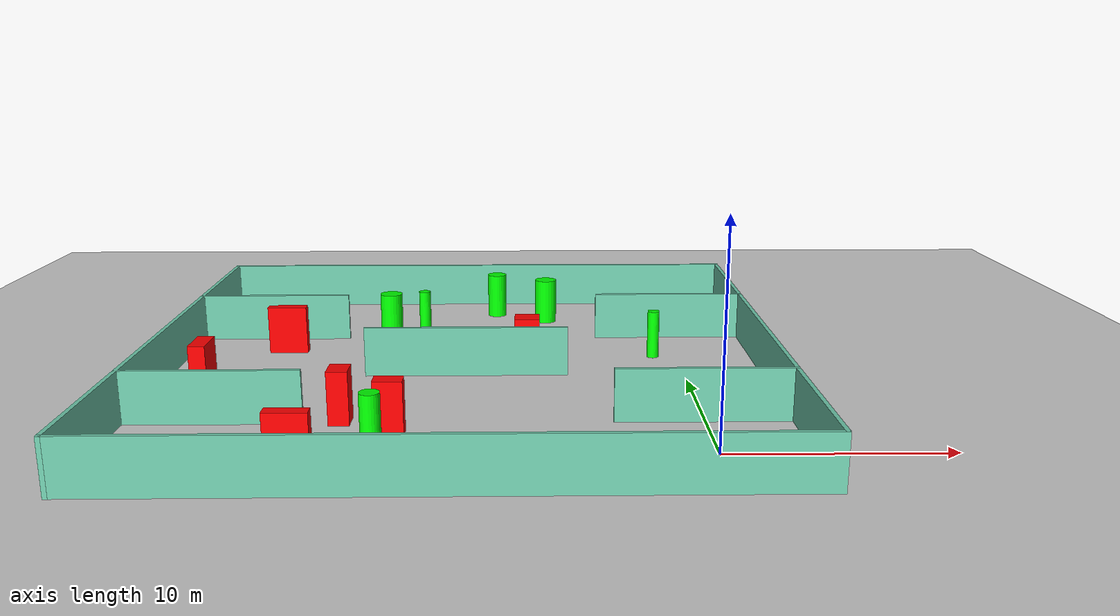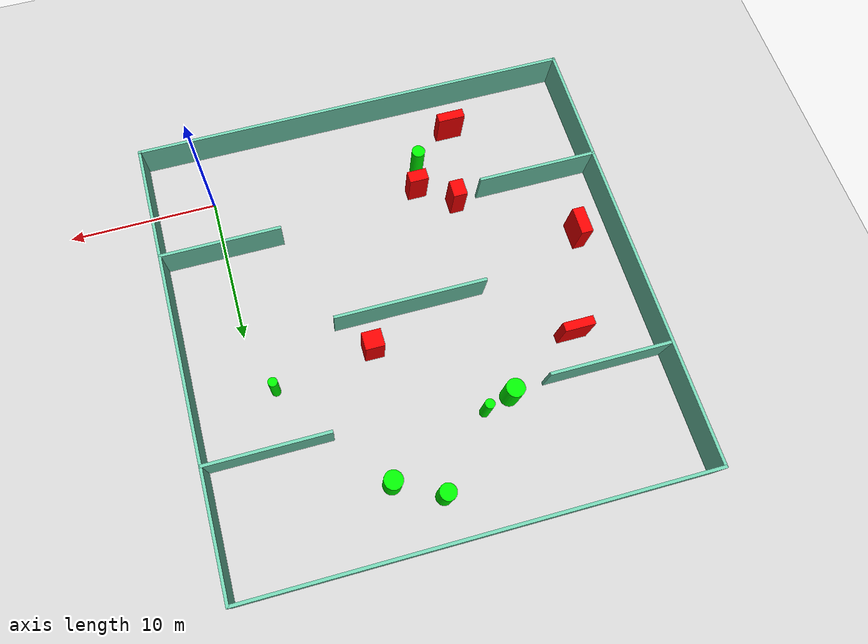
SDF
<sdf version="1.7">
 <world name="default">
  <light name="sun" type="directional">
   <pose>0 0 10 0 -0 0</pose>
   <diffuse>0.8 0.8 0.8 1</diffuse>
   <specular>0.2 0.2 0.2 1</specular>
   <attenuation>
    <range>1000</range>
    <constant>0.9</constant>
    <linear>0.01</linear>
    <quadratic>0.001</quadratic>
   </attenuation>
   <direction>-0.5 0.1 -0.9</direction>
   <spot><inner_angle>0</inner_angle><outer_angle>0</outer_angle><falloff>0</falloff></spot>
  </light>
  <model name="ground_plane">
   <static>1</static>
   <link name="link">
    <collision name="collision">
     <geometry><plane><normal>0 0 1</normal><size>100 100</size></plane></geometry>
     <surface>
      <contact><collide_bitmask>65535</collide_bitmask></contact>
      <friction><ode><mu>100</mu><mu2>50</mu2></ode></friction>
     </surface>
    </collision>
    <visual name="visual">
     <cast_shadows>0</cast_shadows>
     <geometry><plane><normal>0 0 1</normal><size>100 100</size></plane></geometry>
     <material>
      <script><uri>file://media/materials/scripts/gazebo.material</uri><name>Gazebo/Grey</name></script>
     </material>
    </visual>
   </link>
  </model>
  <gravity>0 0 -9.8</gravity>
  <magnetic_field>6e-06 2.3e-05 -4.2e-05</magnetic_field>
  <atmosphere type="adiabatic"/>
  <physics type="ode">
   <max_step_size>0.001</max_step_size>
   <real_time_factor>1</real_time_factor>
   <real_time_update_rate>1000</real_time_update_rate>
  </physics>
  <scene><ambient>0.4 0.4 0.4 1</ambient><background>0.7 0.7 0.7 1</background><shadows>1</shadows></scene>
  <spherical_coordinates>
   <surface_model>EARTH_WGS84</surface_model>
   <latitude_deg>0</latitude_deg>
   <longitude_deg>0</longitude_deg>
   <elevation>0</elevation>
   <heading_deg>0</heading_deg>
  </spherical_coordinates>
  <model name="my_base_walls">
   <link name="Wall_10">
    <collision name="Wall_10_Collision">
     <geometry><box><size>8.2 0.2 2.5</size></box></geometry>
     <pose>0 0 1.25 0 -0 0</pose>
    </collision>
    <visual name="Wall_10_Visual">
     <pose>0 0 1.25 0 -0 0</pose>
     <geometry><box><size>8.2 0.2 2.5</size></box></geometry>
     <material>
      <script><uri>file://media/materials/scripts/gazebo.material</uri><name>Gazebo/Grey</name></script>
      <ambient>0.435294 0.796078 0.67451 1</ambient>
     </material>
     <meta><layer>0</layer></meta>
    </visual>
    <pose>-11 -7 0 0 -0 0</pose>
   </link>
   <link name="Wall_12">
    <collision name="Wall_12_Collision">
     <geometry><box><size>8.2 0.2 2.5</size></box></geometry>
     <pose>0 0 1.25 0 -0 0</pose>
    </collision>
    <visual name="Wall_12_Visual">
     <pose>0 0 1.25 0 -0 0</pose>
     <geometry><box><size>8.2 0.2 2.5</size></box></geometry>
     <material>
      <script><uri>file://media/materials/scripts/gazebo.material</uri><name>Gazebo/Grey</name></script>
      <ambient>0.435294 0.796078 0.67451 1</ambient>
     </material>
     <meta><layer>0</layer></meta>
    </visual>
    <pose>-11 7 0 0 -0 0</pose>
   </link>
   <link name="Wall_14">
    <collision name="Wall_14_Collision">
     <geometry><box><size>8.2 0.2 2.5</size></box></geometry>
     <pose>0 0 1.25 0 -0 0</pose>
    </collision>
    <visual name="Wall_14_Visual">
     <pose>0 0 1.25 0 -0 0</pose>
     <geometry><box><size>8.2 0.2 2.5</size></box></geometry>
     <material>
      <script><uri>file://media/materials/scripts/gazebo.material</uri><name>Gazebo/Grey</name></script>
      <ambient>0.435294 0.796078 0.67451 1</ambient>
     </material>
     <meta><layer>0</layer></meta>
    </visual>
    <pose>11 7 0 0 -0 3.14159</pose>
   </link>
   <link name="Wall_16">
    <collision name="Wall_16_Collision">
     <geometry><box><size>10.2 0.2 2.5</size></box></geometry>
     <pose>0 0 1.25 0 -0 0</pose>
    </collision>
    <visual name="Wall_16_Visual">
     <pose>0 0 1.25 0 -0 0</pose>
     <geometry><box><size>10.2 0.2 2.5</size></box></geometry>
     <material>
      <script><uri>file://media/materials/scripts/gazebo.material</uri><name>Gazebo/Grey</name></script>
      <ambient>0.435294 0.796078 0.67451 1</ambient>
     </material>
     <meta><layer>0</layer></meta>
    </visual>
    <pose>0 0 0 0 -0 3.14159</pose>
   </link>
   <link name="Wall_2">
    <collision name="Wall_2_Collision">
     <geometry><box><size>30.2 0.2 2.5</size></box></geometry>
     <pose>0 0 1.25 0 -0 0</pose>
    </collision>
    <visual name="Wall_2_Visual">
     <pose>0 0 1.25 0 -0 0</pose>
     <geometry><box><size>30.2 0.2 2.5</size></box></geometry>
     <material>
      <script><uri>file://media/materials/scripts/gazebo.material</uri><name>Gazebo/Grey</name></script>
      <ambient>0.435294 0.796078 0.67451 1</ambient>
     </material>
     <meta><layer>0</layer></meta>
    </visual>
    <pose>0 -15 0 0 -0 3.14159</pose>
   </link>
   <link name="Wall_3">
    <collision name="Wall_3_Collision">
     <geometry><box><size>30.2 0.2 2.5</size></box></geometry>
     <pose>0 0 1.25 0 -0 0</pose>
    </collision>
    <visual name="Wall_3_Visual">
     <pose>0 0 1.25 0 -0 0</pose>
     <geometry><box><size>30.2 0.2 2.5</size></box></geometry>
     <material>
      <script><uri>file://media/materials/scripts/gazebo.material</uri><name>Gazebo/Grey</name></script>
      <ambient>0.435294 0.796078 0.67451 1</ambient>
     </material>
     <meta><layer>0</layer></meta>
    </visual>
    <pose>-15 0 0 0 -0 1.5708</pose>
   </link>
   <link name="Wall_4">
    <collision name="Wall_4_Collision">
     <geometry><box><size>30.2 0.2 2.5</size></box></geometry>
     <pose>0 0 1.25 0 -0 0</pose>
    </collision>
    <visual name="Wall_4_Visual">
     <pose>0 0 1.25 0 -0 0</pose>
     <geometry><box><size>30.2 0.2 2.5</size></box></geometry>
     <material>
      <script><uri>file://media/materials/scripts/gazebo.material</uri><name>Gazebo/Grey</name></script>
      <ambient>0.435294 0.796078 0.67451 1</ambient>
     </material>
     <meta><layer>0</layer></meta>
    </visual>
    <pose>0 15 0 0 -0 0</pose>
   </link>
   <link name="Wall_6">
    <collision name="Wall_6_Collision">
     <geometry><box><size>30.2 0.2 2.5</size></box></geometry>
     <pose>0 0 1.25 0 -0 0</pose>
    </collision>
    <visual name="Wall_6_Visual">
     <pose>0 0 1.25 0 -0 0</pose>
     <geometry><box><size>30.2 0.2 2.5</size></box></geometry>
     <material>
      <script><uri>file://media/materials/scripts/gazebo.material</uri><name>Gazebo/Grey</name></script>
      <ambient>0.435294 0.796078 0.67451 1</ambient>
     </material>
     <meta><layer>0</layer></meta>
    </visual>
    <pose>15 0 0 0 -0 1.5708</pose>
   </link>
   <link name="Wall_8">
    <collision name="Wall_8_Collision">
     <geometry><box><size>8.2 0.2 2.5</size></box></geometry>
     <pose>0 0 1.25 0 -0 0</pose>
    </collision>
    <visual name="Wall_8_Visual">
     <pose>0 0 1.25 0 -0 0</pose>
     <geometry><box><size>8.2 0.2 2.5</size></box></geometry>
     <material>
      <script><uri>file://media/materials/scripts/gazebo.material</uri><name>Gazebo/Grey</name></script>
      <ambient>0.435294 0.796078 0.67451 1</ambient>
     </material>
     <meta><layer>0</layer></meta>
    </visual>
    <pose>11 -7 0 0 -0 3.14159</pose>
   </link>
   <static>1</static>
   <pose>-11 11 0 0 -0 0</pose>
  </model>
  <model name="cylinder1">
   <static>1</static>
   <link name="link">
    <inertial>
     <mass>1</mass>
     <inertia><ixx>0.5</ixx><ixy>0</ixy><ixz>0</ixz><iyy>0.5</iyy><iyz>0</iyz><izz>1</izz></inertia>
    </inertial>
    <collision name="collision">
     <geometry><cylinder><radius>0.5412498765779611</radius><length>2.5</length></cylinder></geometry>
    </collision>
    <visual name="visual">
     <geometry><cylinder><radius>0.5412498765779611</radius><length>2.5</length></cylinder></geometry>
     <material>
      <ambient>0 1 0 1</ambient>
      <diffuse>0 1 0 1</diffuse>
      <specular>0.1 0.1 0.1 1</specular>
      <emissive>0 0 0 0</emissive>
     </material>
    </visual>
   </link>
   <pose>-9.725183869876794 23.18132174409537 1.25 0 0 0</pose>
  </model>
  <model name="cylinder2">
   <static>1</static>
   <link name="link">
    <inertial>
     <mass>1</mass>
     <inertia><ixx>0.5</ixx><ixy>0</ixy><ixz>0</ixz><iyy>0.5</iyy><iyz>0</iyz><izz>1</izz></inertia>
    </inertial>
    <collision name="collision">
     <geometry><cylinder><radius>0.45133012994730126</radius><length>2.5</length></cylinder></geometry>
    </collision>
    <visual name="visual">
     <geometry><cylinder><radius>0.45133012994730126</radius><length>2.5</length></cylinder></geometry>
     <material>
      <ambient>0 1 0 1</ambient>
      <diffuse>0 1 0 1</diffuse>
      <specular>0.1 0.1 0.1 1</specular>
      <emissive>0 0 0 0</emissive>
     </material>
    </visual>
   </link>
   <pose>-14.4797851708576 0.8283183003114174 1.25 0 0 0</pose>
  </model>
  <model name="cylinder3">
   <static>1</static>
   <link name="link">
    <inertial>
     <mass>1</mass>
     <inertia><ixx>0.5</ixx><ixy>0</ixy><ixz>0</ixz><iyy>0.5</iyy><iyz>0</iyz><izz>1</izz></inertia>
    </inertial>
    <collision name="collision">
     <geometry><cylinder><radius>0.6026876522971728</radius><length>2.5</length></cylinder></geometry>
    </collision>
    <visual name="visual">
     <geometry><cylinder><radius>0.6026876522971728</radius><length>2.5</length></cylinder></geometry>
     <material>
      <ambient>0 1 0 1</ambient>
      <diffuse>0 1 0 1</diffuse>
      <specular>0.1 0.1 0.1 1</specular>
      <emissive>0 0 0 0</emissive>
     </material>
    </visual>
   </link>
   <pose>-6.8223704979027 21.695272779993722 1.25 0 0 0</pose>
  </model>
  <model name="cylinder4">
   <static>1</static>
   <link name="link">
    <inertial>
     <mass>1</mass>
     <inertia><ixx>0.5</ixx><ixy>0</ixy><ixz>0</ixz><iyy>0.5</iyy><iyz>0</iyz><izz>1</izz></inertia>
    </inertial>
    <collision name="collision">
     <geometry><cylinder><radius>0.3199795412906758</radius><length>2.5</length></cylinder></geometry>
    </collision>
    <visual name="visual">
     <geometry><cylinder><radius>0.3199795412906758</radius><length>2.5</length></cylinder></geometry>
     <material>
      <ambient>0 1 0 1</ambient>
      <diffuse>0 1 0 1</diffuse>
      <specular>0.1 0.1 0.1 1</specular>
      <emissive>0 0 0 0</emissive>
     </material>
    </visual>
   </link>
   <pose>-13.718515821325386 18.82117079624077 1.25 0 0 0</pose>
  </model>
  <model name="cylinder5">
   <static>1</static>
   <link name="link">
    <inertial>
     <mass>1</mass>
     <inertia><ixx>0.5</ixx><ixy>0</ixy><ixz>0</ixz><iyy>0.5</iyy><iyz>0</iyz><izz>1</izz></inertia>
    </inertial>
    <collision name="collision">
     <geometry><cylinder><radius>0.6065218048498953</radius><length>2.5</length></cylinder></geometry>
    </collision>
    <visual name="visual">
     <geometry><cylinder><radius>0.6065218048498953</radius><length>2.5</length></cylinder></geometry>
     <material>
      <ambient>0 1 0 1</ambient>
      <diffuse>0 1 0 1</diffuse>
      <specular>0.1 0.1 0.1 1</specular>
      <emissive>0 0 0 0</emissive>
     </material>
    </visual>
   </link>
   <pose>-15.552375366244787 18.27637063862213 1.25 0 0 0</pose>
  </model>
  <model name="cylinder6">
   <static>1</static>
   <link name="link">
    <inertial>
     <mass>1</mass>
     <inertia><ixx>0.5</ixx><ixy>0</ixy><ixz>0</ixz><iyy>0.5</iyy><iyz>0</iyz><izz>1</izz></inertia>
    </inertial>
    <collision name="collision">
     <geometry><cylinder><radius>0.307463980768755</radius><length>2.5</length></cylinder></geometry>
    </collision>
    <visual name="visual">
     <geometry><cylinder><radius>0.307463980768755</radius><length>2.5</length></cylinder></geometry>
     <material>
      <ambient>0 1 0 1</ambient>
      <diffuse>0 1 0 1</diffuse>
      <specular>0.1 0.1 0.1 1</specular>
      <emissive>0 0 0 0</emissive>
     </material>
    </visual>
   </link>
   <pose>-1.255004180162672 14.107748357879895 1.25 0 0 0</pose>
  </model>
  <model name="box1">
   <static>1</static>
   <link name="link">
    <inertial>
     <mass>1</mass>
     <inertia><ixx>0.083</ixx><ixy>0</ixy><ixz>0</ixz><iyy>0.083</iyy><iyz>0</iyz><izz>0.083</izz></inertia>
    </inertial>
    <collision name="collision">
     <geometry><box><size>1.305649872321018 0.8061641349014304 2.5</size></box></geometry>
    </collision>
    <visual name="visual">
     <geometry><box><size>1.305649872321018 0.8061641349014304 2.5</size></box></geometry>
     <material>
      <ambient>1 0 0 1</ambient>
      <diffuse>1 0 0 1</diffuse>
      <specular>0.1 0.1 0.1 1</specular>
      <emissive>0 0 0 0</emissive>
     </material>
    </visual>
    <sensor name="my_contact" type="contact">
     <contact><collision>box_collision</collision><topic>__default_topic__</topic></contact>
    </sensor>
   </link>
   <pose>-13.916334542737545 2.6130846569459916 1.25 0 0 0</pose>
  </model>
  <model name="box2">
   <static>1</static>
   <link name="link">
    <inertial>
     <mass>1</mass>
     <inertia><ixx>0.083</ixx><ixy>0</ixy><ixz>0</ixz><iyy>0.083</iyy><iyz>0</iyz><izz>0.083</izz></inertia>
    </inertial>
    <collision name="collision">
     <geometry><box><size>1.848306053385208 0.6305429633958004 2.5</size></box></geometry>
    </collision>
    <visual name="visual">
     <geometry><box><size>1.848306053385208 0.6305429633958004 2.5</size></box></geometry>
     <material>
      <ambient>1 0 0 1</ambient>
      <diffuse>1 0 0 1</diffuse>
      <specular>0.1 0.1 0.1 1</specular>
      <emissive>0 0 0 0</emissive>
     </material>
    </visual>
    <sensor name="my_contact" type="contact">
     <contact><collision>box_collision</collision><topic>__default_topic__</topic></contact>
    </sensor>
   </link>
   <pose>-17.46502370574372 -1.3581479235087301 1.25 0 0 0</pose>
  </model>
  <model name="box3">
   <static>1</static>
   <link name="link">
    <inertial>
     <mass>1</mass>
     <inertia><ixx>0.083</ixx><ixy>0</ixy><ixz>0</ixz><iyy>0.083</iyy><iyz>0</iyz><izz>0.083</izz></inertia>
    </inertial>
    <collision name="collision">
     <geometry><box><size>2.0253466663603854 0.582200909467417 2.5</size></box></geometry>
    </collision>
    <visual name="visual">
     <geometry><box><size>2.0253466663603854 0.582200909467417 2.5</size></box></geometry>
     <material>
      <ambient>1 0 0 1</ambient>
      <diffuse>1 0 0 1</diffuse>
      <specular>0.1 0.1 0.1 1</specular>
      <emissive>0 0 0 0</emissive>
     </material>
    </visual>
    <sensor name="my_contact" type="contact">
     <contact><collision>box_collision</collision><topic>__default_topic__</topic></contact>
    </sensor>
   </link>
   <pose>-20.765864417484984 15.37713981908631 1.25 0 0 0</pose>
  </model>
  <model name="box4">
   <static>1</static>
   <link name="link">
    <inertial>
     <mass>1</mass>
     <inertia><ixx>0.083</ixx><ixy>0</ixy><ixz>0</ixz><iyy>0.083</iyy><iyz>0</iyz><izz>0.083</izz></inertia>
    </inertial>
    <collision name="collision">
     <geometry><box><size>0.9502457671507447 1.191730489747324 2.5</size></box></geometry>
    </collision>
    <visual name="visual">
     <geometry><box><size>0.9502457671507447 1.191730489747324 2.5</size></box></geometry>
     <material>
      <ambient>1 0 0 1</ambient>
      <diffuse>1 0 0 1</diffuse>
      <specular>0.1 0.1 0.1 1</specular>
      <emissive>0 0 0 0</emissive>
     </material>
    </visual>
    <sensor name="my_contact" type="contact">
     <contact><collision>box_collision</collision><topic>__default_topic__</topic></contact>
    </sensor>
   </link>
   <pose>-16.282255264482387 4.2005449289908015 1.25 0 0 0</pose>
  </model>
  <model name="box5">
   <static>1</static>
   <link name="link">
    <inertial>
     <mass>1</mass>
     <inertia><ixx>0.083</ixx><ixy>0</ixy><ixz>0</ixz><iyy>0.083</iyy><iyz>0</iyz><izz>0.083</izz></inertia>
    </inertial>
    <collision name="collision">
     <geometry><box><size>1.2742015666834663 1.171404565191492 2.5</size></box></geometry>
    </collision>
    <visual name="visual">
     <geometry><box><size>1.2742015666834663 1.171404565191492 2.5</size></box></geometry>
     <material>
      <ambient>1 0 0 1</ambient>
      <diffuse>1 0 0 1</diffuse>
      <specular>0.1 0.1 0.1 1</specular>
      <emissive>0 0 0 0</emissive>
     </material>
    </visual>
    <sensor name="my_contact" type="contact">
     <contact><collision>box_collision</collision><topic>__default_topic__</topic></contact>
    </sensor>
   </link>
   <pose>-7.9369812223617195 13.03806714857711 1.25 0 0 0</pose>
  </model>
  <model name="box6">
   <static>1</static>
   <link name="link">
    <inertial>
     <mass>1</mass>
     <inertia><ixx>0.083</ixx><ixy>0</ixy><ixz>0</ixz><iyy>0.083</iyy><iyz>0</iyz><izz>0.083</izz></inertia>
    </inertial>
    <collision name="collision">
     <geometry><box><size>0.8005465816557671 1.8436628498146637 2.5</size></box></geometry>
    </collision>
    <visual name="visual">
     <geometry><box><size>0.8005465816557671 1.8436628498146637 2.5</size></box></geometry>
     <material>
      <ambient>1 0 0 1</ambient>
      <diffuse>1 0 0 1</diffuse>
      <specular>0.1 0.1 0.1 1</specular>
      <emissive>0 0 0 0</emissive>
     </material>
    </visual>
    <sensor name="my_contact" type="contact">
     <contact><collision>box_collision</collision><topic>__default_topic__</topic></contact>
    </sensor>
   </link>
   <pose>-23.52794946909779 8.620082573054983 1.25 0 0 0</pose>
  </model>
 </world>
</sdf>
